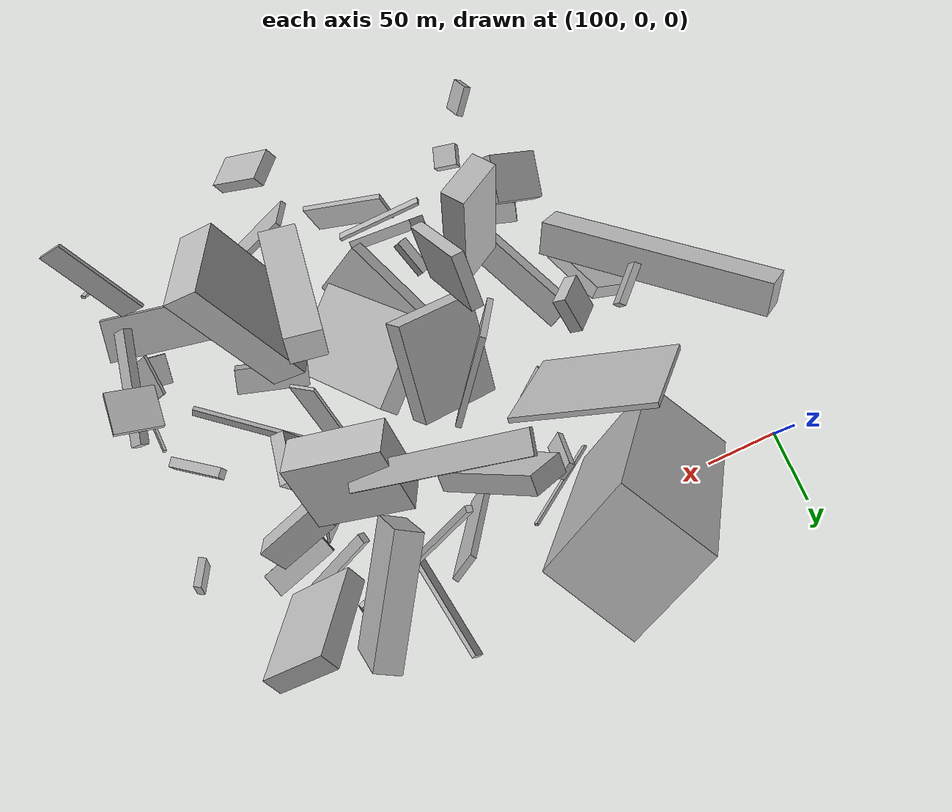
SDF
<sdf version="1.6">
 <world name="default">
  <model name="building_3">
   <static>0</static>
   <pose>196.94101169299068 -23.852186492525295 85.03676326127892 -0.10717618988302265 0.5370241598284978 0.4286737553153996</pose>
   <link name="link">
    <gravity>0</gravity>
    <pose>0 0 75.0 0 0 0</pose>
    <collision name="collision"><geometry><box><size>64 58 150</size></box></geometry></collision>
    <visual name="visual">
     <cast_shadows>0</cast_shadows>
     <geometry><box><size>64 58 150</size></box></geometry>
     <material>
      <script>
       <uri>model://HANNAS_wall/materials/scripts</uri>
       <uri>model://HANNAS_wall/materials/textures</uri>
       <name>vrc/HANNAS_wall</name>
      </script>
     </material>
    </visual>
   </link>
  </model>
  <model name="building_7">
   <static>0</static>
   <pose>190.50636840695503 -179.413061214203 63.150342522314716 1.0931903792221618 -0.7215166813194551 -2.0668910434303838</pose>
   <link name="link">
    <gravity>0</gravity>
    <pose>0 0 75.0 0 0 0</pose>
    <collision name="collision"><geometry><box><size>22 21 150</size></box></geometry></collision>
    <visual name="visual">
     <cast_shadows>0</cast_shadows>
     <geometry><box><size>22 21 150</size></box></geometry>
     <material>
      <script>
       <uri>model://HANNAS_wall/materials/scripts</uri>
       <uri>model://HANNAS_wall/materials/textures</uri>
       <name>vrc/HANNAS_wall</name>
      </script>
     </material>
    </visual>
   </link>
  </model>
  <model name="building_14">
   <static>0</static>
   <pose>316.0667784874225 -30.431536156151964 60.97014140246682 1.7456314045055163 -0.44665392857538283 -2.6576281017336534</pose>
   <link name="link">
    <gravity>0</gravity>
    <pose>0 0 2.0 0 0 0</pose>
    <collision name="collision"><geometry><box><size>19 113 4</size></box></geometry></collision>
    <visual name="visual">
     <cast_shadows>0</cast_shadows>
     <geometry><box><size>19 113 4</size></box></geometry>
     <material>
      <script>
       <uri>model://HANNAS_wall/materials/scripts</uri>
       <uri>model://HANNAS_wall/materials/textures</uri>
       <name>vrc/HANNAS_wall</name>
      </script>
     </material>
    </visual>
   </link>
  </model>
  <model name="building_16">
   <static>0</static>
   <pose>392.3072084396442 -132.91633354064174 13.097634788209685 -0.8047364564581748 -0.046846426155950985 -0.7011548754864289</pose>
   <link name="link">
    <gravity>0</gravity>
    <pose>0 0 2.0 0 0 0</pose>
    <collision name="collision"><geometry><box><size>150 5 4</size></box></geometry></collision>
    <visual name="visual">
     <cast_shadows>0</cast_shadows>
     <geometry><box><size>150 5 4</size></box></geometry>
     <material>
      <script>
       <uri>model://HANNAS_wall/materials/scripts</uri>
       <uri>model://HANNAS_wall/materials/textures</uri>
       <name>vrc/HANNAS_wall</name>
      </script>
     </material>
    </visual>
   </link>
  </model>
  <model name="building_18">
   <static>0</static>
   <pose>261.7999692067236 -133.57863174096963 61.57466644306172 0.6465894400426304 0.04952040182783067 2.4536771388072682</pose>
   <link name="link">
    <gravity>0</gravity>
    <pose>0 0 28.5 0 0 0</pose>
    <collision name="collision"><geometry><box><size>4 63 57</size></box></geometry></collision>
    <visual name="visual">
     <cast_shadows>0</cast_shadows>
     <geometry><box><size>4 63 57</size></box></geometry>
     <material>
      <script>
       <uri>model://HANNAS_wall/materials/scripts</uri>
       <uri>model://HANNAS_wall/materials/textures</uri>
       <name>vrc/HANNAS_wall</name>
      </script>
     </material>
    </visual>
   </link>
  </model>
  <model name="building_19">
   <static>0</static>
   <pose>428.0100042955955 -246.20898675549606 37.376018364381196 2.835572647803101 -1.1945118802888808 1.6760327118277407</pose>
   <link name="link">
    <gravity>0</gravity>
    <pose>0 0 14.0 0 0 0</pose>
    <collision name="collision"><geometry><box><size>12 103 28</size></box></geometry></collision>
    <visual name="visual">
     <cast_shadows>0</cast_shadows>
     <geometry><box><size>12 103 28</size></box></geometry>
     <material>
      <script>
       <uri>model://HANNAS_wall/materials/scripts</uri>
       <uri>model://HANNAS_wall/materials/textures</uri>
       <name>vrc/HANNAS_wall</name>
      </script>
     </material>
    </visual>
   </link>
  </model>
  <model name="building_20">
   <static>0</static>
   <pose>395.30493964058525 -92.34229933938144 117.17108386380531 1.0630977818233391 -0.8424706589486903 -1.4455936144356671</pose>
   <link name="link">
    <gravity>0</gravity>
    <pose>0 0 30.5 0 0 0</pose>
    <collision name="collision"><geometry><box><size>51 25 61</size></box></geometry></collision>
    <visual name="visual">
     <cast_shadows>0</cast_shadows>
     <geometry><box><size>51 25 61</size></box></geometry>
     <material>
      <script>
       <uri>model://HANNAS_wall/materials/scripts</uri>
       <uri>model://HANNAS_wall/materials/textures</uri>
       <name>vrc/HANNAS_wall</name>
      </script>
     </material>
    </visual>
   </link>
  </model>
  <model name="building_21">
   <static>0</static>
   <pose>274.1176198754541 -55.66769691245568 55.741877741879144 0.921523315342639 0.4297152876588826 1.5142178881075152</pose>
   <link name="link">
    <gravity>0</gravity>
    <pose>0 0 14.5 0 0 0</pose>
    <collision name="collision"><geometry><box><size>14 82 29</size></box></geometry></collision>
    <visual name="visual">
     <cast_shadows>0</cast_shadows>
     <geometry><box><size>14 82 29</size></box></geometry>
     <material>
      <script>
       <uri>model://HANNAS_wall/materials/scripts</uri>
       <uri>model://HANNAS_wall/materials/textures</uri>
       <name>vrc/HANNAS_wall</name>
      </script>
     </material>
    </visual>
   </link>
  </model>
  <model name="building_28">
   <static>0</static>
   <pose>353.1940645293082 -144.71933570355776 41.332064948987316 -1.4008870746689353 -0.5412063835921306 2.21202912507191</pose>
   <link name="link">
    <gravity>0</gravity>
    <pose>0 0 31.0 0 0 0</pose>
    <collision name="collision"><geometry><box><size>81 19 62</size></box></geometry></collision>
    <visual name="visual">
     <cast_shadows>0</cast_shadows>
     <geometry><box><size>81 19 62</size></box></geometry>
     <material>
      <script>
       <uri>model://HANNAS_wall/materials/scripts</uri>
       <uri>model://HANNAS_wall/materials/textures</uri>
       <name>vrc/HANNAS_wall</name>
      </script>
     </material>
    </visual>
   </link>
  </model>
  <model name="building_36">
   <static>0</static>
   <pose>346.7774181658001 -29.741683877760163 91.44816467800025 1.3407157926723692 0.3816458607613275 2.869380467046199</pose>
   <link name="link">
    <gravity>0</gravity>
    <pose>0 0 2.0 0 0 0</pose>
    <collision name="collision"><geometry><box><size>4 150 4</size></box></geometry></collision>
    <visual name="visual">
     <cast_shadows>0</cast_shadows>
     <geometry><box><size>4 150 4</size></box></geometry>
     <material>
      <script>
       <uri>model://HANNAS_wall/materials/scripts</uri>
       <uri>model://HANNAS_wall/materials/textures</uri>
       <name>vrc/HANNAS_wall</name>
      </script>
     </material>
    </visual>
   </link>
  </model>
  <model name="building_38">
   <static>0</static>
   <pose>488.67369343721634 -74.24169819657914 15.866578409388056 0.21499383037150036 -0.07022931389827311 -0.555680839588141</pose>
   <link name="link">
    <gravity>0</gravity>
    <pose>0 0 13.0 0 0 0</pose>
    <collision name="collision"><geometry><box><size>5 19 26</size></box></geometry></collision>
    <visual name="visual">
     <cast_shadows>0</cast_shadows>
     <geometry><box><size>5 19 26</size></box></geometry>
     <material>
      <script>
       <uri>model://HANNAS_wall/materials/scripts</uri>
       <uri>model://HANNAS_wall/materials/textures</uri>
       <name>vrc/HANNAS_wall</name>
      </script>
     </material>
    </visual>
   </link>
  </model>
  <model name="building_45">
   <static>0</static>
   <pose>322.1054726729883 -67.02097377802386 168.16520493836197 3.118902541991762 0.5134133669927164 -0.2839396074568285</pose>
   <link name="link">
    <gravity>0</gravity>
    <pose>0 0 2.0 0 0 0</pose>
    <collision name="collision"><geometry><box><size>115 15 4</size></box></geometry></collision>
    <visual name="visual">
     <cast_shadows>0</cast_shadows>
     <geometry><box><size>115 15 4</size></box></geometry>
     <material>
      <script>
       <uri>model://HANNAS_wall/materials/scripts</uri>
       <uri>model://HANNAS_wall/materials/textures</uri>
       <name>vrc/HANNAS_wall</name>
      </script>
     </material>
    </visual>
   </link>
  </model>
  <model name="building_46">
   <static>0</static>
   <pose>409.81647661095 -33.12656830785072 84.91780740882496 0.6727454625095052 -0.655723175859762 3.1279728697994766</pose>
   <link name="link">
    <gravity>0</gravity>
    <pose>0 0 31.0 0 0 0</pose>
    <collision name="collision"><geometry><box><size>50 14 62</size></box></geometry></collision>
    <visual name="visual">
     <cast_shadows>0</cast_shadows>
     <geometry><box><size>50 14 62</size></box></geometry>
     <material>
      <script>
       <uri>model://HANNAS_wall/materials/scripts</uri>
       <uri>model://HANNAS_wall/materials/textures</uri>
       <name>vrc/HANNAS_wall</name>
      </script>
     </material>
    </visual>
   </link>
  </model>
  <model name="building_48">
   <static>0</static>
   <pose>372.65005872697157 -219.85057853060357 116.85582710702974 -0.9303031945038349 -0.8128402908479886 -1.0077503251969608</pose>
   <link name="link">
    <gravity>0</gravity>
    <pose>0 0 24.5 0 0 0</pose>
    <collision name="collision"><geometry><box><size>90 25 49</size></box></geometry></collision>
    <visual name="visual">
     <cast_shadows>0</cast_shadows>
     <geometry><box><size>90 25 49</size></box></geometry>
     <material>
      <script>
       <uri>model://HANNAS_wall/materials/scripts</uri>
       <uri>model://HANNAS_wall/materials/textures</uri>
       <name>vrc/HANNAS_wall</name>
      </script>
     </material>
    </visual>
   </link>
  </model>
  <model name="building_50">
   <static>0</static>
   <pose>220.86505331360195 -256.19160992129406 146.92379286603537 -2.2550753702309385 -0.8256295268816202 1.6528478169733016</pose>
   <link name="link">
    <gravity>0</gravity>
    <pose>0 0 2.0 0 0 0</pose>
    <collision name="collision"><geometry><box><size>17 17 4</size></box></geometry></collision>
    <visual name="visual">
     <cast_shadows>0</cast_shadows>
     <geometry><box><size>17 17 4</size></box></geometry>
     <material>
      <script>
       <uri>model://HANNAS_wall/materials/scripts</uri>
       <uri>model://HANNAS_wall/materials/textures</uri>
       <name>vrc/HANNAS_wall</name>
      </script>
     </material>
    </visual>
   </link>
  </model>
  <model name="building_54">
   <static>0</static>
   <pose>265.6957070730981 -153.7687922476667 13.620396007652708 1.9270283446784517 0.3181062293003859 2.5058402378850833</pose>
   <link name="link">
    <gravity>0</gravity>
    <pose>0 0 2.0 0 0 0</pose>
    <collision name="collision"><geometry><box><size>38 5 4</size></box></geometry></collision>
    <visual name="visual">
     <cast_shadows>0</cast_shadows>
     <geometry><box><size>38 5 4</size></box></geometry>
     <material>
      <script>
       <uri>model://HANNAS_wall/materials/scripts</uri>
       <uri>model://HANNAS_wall/materials/textures</uri>
       <name>vrc/HANNAS_wall</name>
      </script>
     </material>
    </visual>
   </link>
  </model>
  <model name="building_55">
   <static>0</static>
   <pose>348.7555725041409 -272.2305155143253 126.04868505978634 -0.248468402914568 -0.7291242090016277 2.547190054884107</pose>
   <link name="link">
    <gravity>0</gravity>
    <pose>0 0 4.0 0 0 0</pose>
    <collision name="collision"><geometry><box><size>39 20 8</size></box></geometry></collision>
    <visual name="visual">
     <cast_shadows>0</cast_shadows>
     <geometry><box><size>39 20 8</size></box></geometry>
     <material>
      <script>
       <uri>model://HANNAS_wall/materials/scripts</uri>
       <uri>model://HANNAS_wall/materials/textures</uri>
       <name>vrc/HANNAS_wall</name>
      </script>
     </material>
    </visual>
   </link>
  </model>
  <model name="building_71">
   <static>0</static>
   <pose>437.3565216037048 -68.61914271934508 34.30843877381673 -0.8928832874892836 0.47854132627180146 2.137817232400987</pose>
   <link name="link">
    <gravity>0</gravity>
    <pose>0 0 26.5 0 0 0</pose>
    <collision name="collision"><geometry><box><size>20 14 53</size></box></geometry></collision>
    <visual name="visual">
     <cast_shadows>0</cast_shadows>
     <geometry><box><size>20 14 53</size></box></geometry>
     <material>
      <script>
       <uri>model://HANNAS_wall/materials/scripts</uri>
       <uri>model://HANNAS_wall/materials/textures</uri>
       <name>vrc/HANNAS_wall</name>
      </script>
     </material>
    </visual>
   </link>
  </model>
  <model name="building_73">
   <static>0</static>
   <pose>314.17992808929654 -126.4035847208243 107.84374916059397 2.230889309847016 0.8909190472969664 -0.939733376667284</pose>
   <link name="link">
    <gravity>0</gravity>
    <pose>0 0 26.5 0 0 0</pose>
    <collision name="collision"><geometry><box><size>15 64 53</size></box></geometry></collision>
    <visual name="visual">
     <cast_shadows>0</cast_shadows>
     <geometry><box><size>15 64 53</size></box></geometry>
     <material>
      <script>
       <uri>model://HANNAS_wall/materials/scripts</uri>
       <uri>model://HANNAS_wall/materials/textures</uri>
       <name>vrc/HANNAS_wall</name>
      </script>
     </material>
    </visual>
   </link>
  </model>
  <model name="building_75">
   <static>0</static>
   <pose>188.74963731434354 -107.0743389491158 186.80692967861177 2.879050373058401 0.030683555929073732 0.7590617573124923</pose>
   <link name="link">
    <gravity>0</gravity>
    <pose>0 0 4.5 0 0 0</pose>
    <collision name="collision"><geometry><box><size>24 4 9</size></box></geometry></collision>
    <visual name="visual">
     <cast_shadows>0</cast_shadows>
     <geometry><box><size>24 4 9</size></box></geometry>
     <material>
      <script>
       <uri>model://HANNAS_wall/materials/scripts</uri>
       <uri>model://HANNAS_wall/materials/textures</uri>
       <name>vrc/HANNAS_wall</name>
      </script>
     </material>
    </visual>
   </link>
  </model>
  <model name="building_76">
   <static>0</static>
   <pose>399.0767223659126 -16.141876456013794 6.560536453187842 -2.8326186868595746 0.6589390769807529 -1.0916643457401227</pose>
   <link name="link">
    <gravity>0</gravity>
    <pose>0 0 4.0 0 0 0</pose>
    <collision name="collision"><geometry><box><size>4 10 8</size></box></geometry></collision>
    <visual name="visual">
     <cast_shadows>0</cast_shadows>
     <geometry><box><size>4 10 8</size></box></geometry>
     <material>
      <script>
       <uri>model://HANNAS_wall/materials/scripts</uri>
       <uri>model://HANNAS_wall/materials/textures</uri>
       <name>vrc/HANNAS_wall</name>
      </script>
     </material>
    </visual>
   </link>
  </model>
  <model name="building_79">
   <static>0</static>
   <pose>319.658312011298 -225.1948068855677 32.17056919056798 -1.6711283728660589 0.7099019607687979 0.2992518365790529</pose>
   <link name="link">
    <gravity>0</gravity>
    <pose>0 0 43.0 0 0 0</pose>
    <collision name="collision"><geometry><box><size>40 12 86</size></box></geometry></collision>
    <visual name="visual">
     <cast_shadows>0</cast_shadows>
     <geometry><box><size>40 12 86</size></box></geometry>
     <material>
      <script>
       <uri>model://HANNAS_wall/materials/scripts</uri>
       <uri>model://HANNAS_wall/materials/textures</uri>
       <name>vrc/HANNAS_wall</name>
      </script>
     </material>
    </visual>
   </link>
  </model>
  <model name="building_81">
   <static>0</static>
   <pose>282.7691883716138 -228.78588431570282 30.869368836469384 -1.1628829469563158 -0.7679619171296312 2.7771609967227593</pose>
   <link name="link">
    <gravity>0</gravity>
    <pose>0 0 3.5 0 0 0</pose>
    <collision name="collision"><geometry><box><size>59 14 7</size></box></geometry></collision>
    <visual name="visual">
     <cast_shadows>0</cast_shadows>
     <geometry><box><size>59 14 7</size></box></geometry>
     <material>
      <script>
       <uri>model://HANNAS_wall/materials/scripts</uri>
       <uri>model://HANNAS_wall/materials/textures</uri>
       <name>vrc/HANNAS_wall</name>
      </script>
     </material>
    </visual>
   </link>
  </model>
  <model name="building_82">
   <static>0</static>
   <pose>402.45997569483455 -41.48999578687453 32.10347523463004 1.777138436853245 0.6306036400377316 0.33222855502667137</pose>
   <link name="link">
    <gravity>0</gravity>
    <pose>0 0 3.5 0 0 0</pose>
    <collision name="collision"><geometry><box><size>60 6 7</size></box></geometry></collision>
    <visual name="visual">
     <cast_shadows>0</cast_shadows>
     <geometry><box><size>60 6 7</size></box></geometry>
     <material>
      <script>
       <uri>model://HANNAS_wall/materials/scripts</uri>
       <uri>model://HANNAS_wall/materials/textures</uri>
       <name>vrc/HANNAS_wall</name>
      </script>
     </material>
    </visual>
   </link>
  </model>
  <model name="building_88">
   <static>0</static>
   <pose>423.68952034586295 -48.59380277353718 27.181778823203707 -0.8463355052146809 1.4055056258965846 -2.1470943433737073</pose>
   <link name="link">
    <gravity>0</gravity>
    <pose>0 0 8.5 0 0 0</pose>
    <collision name="collision"><geometry><box><size>4 45 17</size></box></geometry></collision>
    <visual name="visual">
     <cast_shadows>0</cast_shadows>
     <geometry><box><size>4 45 17</size></box></geometry>
     <material>
      <script>
       <uri>model://HANNAS_wall/materials/scripts</uri>
       <uri>model://HANNAS_wall/materials/textures</uri>
       <name>vrc/HANNAS_wall</name>
      </script>
     </material>
    </visual>
   </link>
  </model>
  <model name="building_90">
   <static>0</static>
   <pose>260.465073746855 -55.95591724704856 6.606467581390008 1.8816744882905423 -0.9457312950434258 -1.911145756043433</pose>
   <link name="link">
    <gravity>0</gravity>
    <pose>0 0 2.0 0 0 0</pose>
    <collision name="collision"><geometry><box><size>4 12 4</size></box></geometry></collision>
    <visual name="visual">
     <cast_shadows>0</cast_shadows>
     <geometry><box><size>4 12 4</size></box></geometry>
     <material>
      <script>
       <uri>model://HANNAS_wall/materials/scripts</uri>
       <uri>model://HANNAS_wall/materials/textures</uri>
       <name>vrc/HANNAS_wall</name>
      </script>
     </material>
    </visual>
   </link>
  </model>
  <model name="building_94">
   <static>0</static>
   <pose>174.87985580794597 -171.16857956105332 25.168592637331617 0.966328303575933 -0.7380716382975742 -2.4653784669183487</pose>
   <link name="link">
    <gravity>0</gravity>
    <pose>0 0 23.5 0 0 0</pose>
    <collision name="collision"><geometry><box><size>9 37 47</size></box></geometry></collision>
    <visual name="visual">
     <cast_shadows>0</cast_shadows>
     <geometry><box><size>9 37 47</size></box></geometry>
     <material>
      <script>
       <uri>model://HANNAS_wall/materials/scripts</uri>
       <uri>model://HANNAS_wall/materials/textures</uri>
       <name>vrc/HANNAS_wall</name>
      </script>
     </material>
    </visual>
   </link>
  </model>
  <model name="building_103">
   <static>0</static>
   <pose>405.2375399333255 -118.37641000903753 67.87835088307045 -2.8829146146516207 0.4136318304266671 -0.09046223791417088</pose>
   <link name="link">
    <gravity>0</gravity>
    <pose>0 0 25.0 0 0 0</pose>
    <collision name="collision"><geometry><box><size>10 34 50</size></box></geometry></collision>
    <visual name="visual">
     <cast_shadows>0</cast_shadows>
     <geometry><box><size>10 34 50</size></box></geometry>
     <material>
      <script>
       <uri>model://HANNAS_wall/materials/scripts</uri>
       <uri>model://HANNAS_wall/materials/textures</uri>
       <name>vrc/HANNAS_wall</name>
      </script>
     </material>
    </visual>
   </link>
  </model>
  <model name="building_104">
   <static>0</static>
   <pose>463.5760833208606 -261.0029251165977 99.6554506232435 -2.1104934751538065 -0.8830787519348797 2.758901424216332</pose>
   <link name="link">
    <gravity>0</gravity>
    <pose>0 0 1.0 0 0 0</pose>
    <collision name="collision"><geometry><box><size>30 61 2</size></box></geometry></collision>
    <visual name="visual">
     <cast_shadows>0</cast_shadows>
     <geometry><box><size>30 61 2</size></box></geometry>
     <material>
      <script>
       <uri>model://HANNAS_wall/materials/scripts</uri>
       <uri>model://HANNAS_wall/materials/textures</uri>
       <name>vrc/HANNAS_wall</name>
      </script>
     </material>
    </visual>
   </link>
  </model>
  <model name="building_105">
   <static>0</static>
   <pose>474.0320129534916 -166.471400009992 43.49504192684646 0.6544478412104703 0.4483702598987192 -1.490109032075181</pose>
   <link name="link">
    <gravity>0</gravity>
    <pose>0 0 1.0 0 0 0</pose>
    <collision name="collision"><geometry><box><size>22 2 2</size></box></geometry></collision>
    <visual name="visual">
     <cast_shadows>0</cast_shadows>
     <geometry><box><size>22 2 2</size></box></geometry>
     <material>
      <script>
       <uri>model://HANNAS_wall/materials/scripts</uri>
       <uri>model://HANNAS_wall/materials/textures</uri>
       <name>vrc/HANNAS_wall</name>
      </script>
     </material>
    </visual>
   </link>
  </model>
  <model name="building_109">
   <static>0</static>
   <pose>380.60035700949754 -82.43203646974457 38.47216487300315 -1.4604332981225123 -0.3655378671894833 0.743711740469095</pose>
   <link name="link">
    <gravity>0</gravity>
    <pose>0 0 1.0 0 0 0</pose>
    <collision name="collision"><geometry><box><size>60 18 2</size></box></geometry></collision>
    <visual name="visual">
     <cast_shadows>0</cast_shadows>
     <geometry><box><size>60 18 2</size></box></geometry>
     <material>
      <script>
       <uri>model://HANNAS_wall/materials/scripts</uri>
       <uri>model://HANNAS_wall/materials/textures</uri>
       <name>vrc/HANNAS_wall</name>
      </script>
     </material>
    </visual>
   </link>
  </model>
  <model name="building_117">
   <static>0</static>
   <pose>477.80131686016364 -201.7948271338107 56.67606518797943 0.7610283266516149 -0.006998984718805634 -1.8215744700205985</pose>
   <link name="link">
    <gravity>0</gravity>
    <pose>0 0 6.0 0 0 0</pose>
    <collision name="collision"><geometry><box><size>75 6 12</size></box></geometry></collision>
    <visual name="visual">
     <cast_shadows>0</cast_shadows>
     <geometry><box><size>75 6 12</size></box></geometry>
     <material>
      <script>
       <uri>model://HANNAS_wall/materials/scripts</uri>
       <uri>model://HANNAS_wall/materials/textures</uri>
       <name>vrc/HANNAS_wall</name>
      </script>
     </material>
    </visual>
   </link>
  </model>
  <model name="building_118">
   <static>0</static>
   <pose>220.7786909782648 -167.21845823155957 18.98457278696736 -0.06017950995978591 -0.7460727905650831 0.4393391095713704</pose>
   <link name="link">
    <gravity>0</gravity>
    <pose>0 0 10.5 0 0 0</pose>
    <collision name="collision"><geometry><box><size>9 80 21</size></box></geometry></collision>
    <visual name="visual">
     <cast_shadows>0</cast_shadows>
     <geometry><box><size>9 80 21</size></box></geometry>
     <material>
      <script>
       <uri>model://HANNAS_wall/materials/scripts</uri>
       <uri>model://HANNAS_wall/materials/textures</uri>
       <name>vrc/HANNAS_wall</name>
      </script>
     </material>
    </visual>
   </link>
  </model>
  <model name="building_122">
   <static>0</static>
   <pose>200.18167512900413 -76.58747790477146 105.70961480538269 -2.2903287393062 0.33140265311237416 -2.133314565260629</pose>
   <link name="link">
    <gravity>0</gravity>
    <pose>0 0 12.5 0 0 0</pose>
    <collision name="collision"><geometry><box><size>11 2 25</size></box></geometry></collision>
    <visual name="visual">
     <cast_shadows>0</cast_shadows>
     <geometry><box><size>11 2 25</size></box></geometry>
     <material>
      <script>
       <uri>model://HANNAS_wall/materials/scripts</uri>
       <uri>model://HANNAS_wall/materials/textures</uri>
       <name>vrc/HANNAS_wall</name>
      </script>
     </material>
    </visual>
   </link>
  </model>
  <model name="building_124">
   <static>0</static>
   <pose>278.7241581297685 -13.68413068738031 59.91442070068627 -2.104711113495482 0.4196047162993936 1.8790478447786623</pose>
   <link name="link">
    <gravity>0</gravity>
    <pose>0 0 35.5 0 0 0</pose>
    <collision name="collision"><geometry><box><size>2 3 71</size></box></geometry></collision>
    <visual name="visual">
     <cast_shadows>0</cast_shadows>
     <geometry><box><size>2 3 71</size></box></geometry>
     <material>
      <script>
       <uri>model://HANNAS_wall/materials/scripts</uri>
       <uri>model://HANNAS_wall/materials/textures</uri>
       <name>vrc/HANNAS_wall</name>
      </script>
     </material>
    </visual>
   </link>
  </model>
  <model name="building_126">
   <static>0</static>
   <pose>388.84813148141745 -170.5744278070472 65.94736642790022 -0.13005184590604657 0.28533935315218334 1.247597414530824</pose>
   <link name="link">
    <gravity>0</gravity>
    <pose>0 0 14.5 0 0 0</pose>
    <collision name="collision"><geometry><box><size>15 44 29</size></box></geometry></collision>
    <visual name="visual">
     <cast_shadows>0</cast_shadows>
     <geometry><box><size>15 44 29</size></box></geometry>
     <material>
      <script>
       <uri>model://HANNAS_wall/materials/scripts</uri>
       <uri>model://HANNAS_wall/materials/textures</uri>
       <name>vrc/HANNAS_wall</name>
      </script>
     </material>
    </visual>
   </link>
  </model>
  <model name="building_133">
   <static>0</static>
   <pose>243.58377646601727 -183.04031482857192 67.96632434327346 -0.23687663572228804 0.27623281002284505 -2.6213099108725864</pose>
   <link name="link">
    <gravity>0</gravity>
    <pose>0 0 40.0 0 0 0</pose>
    <collision name="collision"><geometry><box><size>34 16 80</size></box></geometry></collision>
    <visual name="visual">
     <cast_shadows>0</cast_shadows>
     <geometry><box><size>34 16 80</size></box></geometry>
     <material>
      <script>
       <uri>model://HANNAS_wall/materials/scripts</uri>
       <uri>model://HANNAS_wall/materials/textures</uri>
       <name>vrc/HANNAS_wall</name>
      </script>
     </material>
    </visual>
   </link>
  </model>
  <model name="building_134">
   <static>0</static>
   <pose>477.7095609571242 -208.92393011288252 20.14616023785807 0.6735417683126984 -0.11895909005951187 -1.5189023839801654</pose>
   <link name="link">
    <gravity>0</gravity>
    <pose>0 0 14.0 0 0 0</pose>
    <collision name="collision"><geometry><box><size>28 2 28</size></box></geometry></collision>
    <visual name="visual">
     <cast_shadows>0</cast_shadows>
     <geometry><box><size>28 2 28</size></box></geometry>
     <material>
      <script>
       <uri>model://HANNAS_wall/materials/scripts</uri>
       <uri>model://HANNAS_wall/materials/textures</uri>
       <name>vrc/HANNAS_wall</name>
      </script>
     </material>
    </visual>
   </link>
  </model>
  <model name="building_141">
   <static>0</static>
   <pose>248.6372402095318 -43.571100596846044 40.883567062748014 -0.6386830838379703 -0.859320761860294 1.334021198551364</pose>
   <link name="link">
    <gravity>0</gravity>
    <pose>0 0 6.5 0 0 0</pose>
    <collision name="collision"><geometry><box><size>35 4 13</size></box></geometry></collision>
    <visual name="visual">
     <cast_shadows>0</cast_shadows>
     <geometry><box><size>35 4 13</size></box></geometry>
     <material>
      <script>
       <uri>model://HANNAS_wall/materials/scripts</uri>
       <uri>model://HANNAS_wall/materials/textures</uri>
       <name>vrc/HANNAS_wall</name>
      </script>
     </material>
    </visual>
   </link>
  </model>
  <model name="building_142">
   <static>0</static>
   <pose>368.8252149067176 -126.76688737112642 104.03105701661015 -0.8306345621079474 -1.2276105767426428 -1.397195343960796</pose>
   <link name="link">
    <gravity>0</gravity>
    <pose>0 0 1.0 0 0 0</pose>
    <collision name="collision"><geometry><box><size>80 15 2</size></box></geometry></collision>
    <visual name="visual">
     <cast_shadows>0</cast_shadows>
     <geometry><box><size>80 15 2</size></box></geometry>
     <material>
      <script>
       <uri>model://HANNAS_wall/materials/scripts</uri>
       <uri>model://HANNAS_wall/materials/textures</uri>
       <name>vrc/HANNAS_wall</name>
      </script>
     </material>
    </visual>
   </link>
  </model>
  <model name="building_145">
   <static>0</static>
   <pose>270.1613338617543 -213.61288885269164 22.182871791186365 -1.2846076493553205 -0.26431244592368797 -1.290332572319355</pose>
   <link name="link">
    <gravity>0</gravity>
    <pose>0 0 3.5 0 0 0</pose>
    <collision name="collision"><geometry><box><size>26 9 7</size></box></geometry></collision>
    <visual name="visual">
     <cast_shadows>0</cast_shadows>
     <geometry><box><size>26 9 7</size></box></geometry>
     <material>
      <script>
       <uri>model://HANNAS_wall/materials/scripts</uri>
       <uri>model://HANNAS_wall/materials/textures</uri>
       <name>vrc/HANNAS_wall</name>
      </script>
     </material>
    </visual>
   </link>
  </model>
  <model name="building_149">
   <static>0</static>
   <pose>355.8295547894769 -32.56001562180218 19.9976814917338 0.988574839899574 1.1509415846969613 2.7175380331981236</pose>
   <link name="link">
    <gravity>0</gravity>
    <pose>0 0 40.0 0 0 0</pose>
    <collision name="collision"><geometry><box><size>12 3 80</size></box></geometry></collision>
    <visual name="visual">
     <cast_shadows>0</cast_shadows>
     <geometry><box><size>12 3 80</size></box></geometry>
     <material>
      <script>
       <uri>model://HANNAS_wall/materials/scripts</uri>
       <uri>model://HANNAS_wall/materials/textures</uri>
       <name>vrc/HANNAS_wall</name>
      </script>
     </material>
    </visual>
   </link>
  </model>
  <model name="building_169">
   <static>0</static>
   <pose>368.8304151912624 -10.476821255932592 116.18706394850558 1.3005352372091028 0.17062693784677452 0.9766282256345745</pose>
   <link name="link">
    <gravity>0</gravity>
    <pose>0 0 8.5 0 0 0</pose>
    <collision name="collision"><geometry><box><size>80 50 17</size></box></geometry></collision>
    <visual name="visual">
     <cast_shadows>0</cast_shadows>
     <geometry><box><size>80 50 17</size></box></geometry>
     <material>
      <script>
       <uri>model://HANNAS_wall/materials/scripts</uri>
       <uri>model://HANNAS_wall/materials/textures</uri>
       <name>vrc/HANNAS_wall</name>
      </script>
     </material>
    </visual>
   </link>
  </model>
  <model name="building_170">
   <static>0</static>
   <pose>304.14737968349834 -231.20008516863473 107.05438547407249 -1.7739103700824888 -0.2925976045120819 2.7704985247777794</pose>
   <link name="link">
    <gravity>0</gravity>
    <pose>0 0 1.5 0 0 0</pose>
    <collision name="collision"><geometry><box><size>49 25 3</size></box></geometry></collision>
    <visual name="visual">
     <cast_shadows>0</cast_shadows>
     <geometry><box><size>49 25 3</size></box></geometry>
     <material>
      <script>
       <uri>model://HANNAS_wall/materials/scripts</uri>
       <uri>model://HANNAS_wall/materials/textures</uri>
       <name>vrc/HANNAS_wall</name>
      </script>
     </material>
    </visual>
   </link>
  </model>
  <model name="building_171">
   <static>0</static>
   <pose>452.3639674191327 -211.54665388809536 26.355029345617034 -1.0790662334693712 1.1890397532605637 -1.2422935644351731</pose>
   <link name="link">
    <gravity>0</gravity>
    <pose>0 0 8.5 0 0 0</pose>
    <collision name="collision"><geometry><box><size>4 20 17</size></box></geometry></collision>
    <visual name="visual">
     <cast_shadows>0</cast_shadows>
     <geometry><box><size>4 20 17</size></box></geometry>
     <material>
      <script>
       <uri>model://HANNAS_wall/materials/scripts</uri>
       <uri>model://HANNAS_wall/materials/textures</uri>
       <name>vrc/HANNAS_wall</name>
      </script>
     </material>
    </visual>
   </link>
  </model>
  <model name="building_173">
   <static>0</static>
   <pose>190.4133732191939 -239.26141759939924 59.5343895911667 -1.8212966761810245 -0.542870838933401 -0.10412884018113686</pose>
   <link name="link">
    <gravity>0</gravity>
    <pose>0 0 15.5 0 0 0</pose>
    <collision name="collision"><geometry><box><size>37 9 31</size></box></geometry></collision>
    <visual name="visual">
     <cast_shadows>0</cast_shadows>
     <geometry><box><size>37 9 31</size></box></geometry>
     <material>
      <script>
       <uri>model://HANNAS_wall/materials/scripts</uri>
       <uri>model://HANNAS_wall/materials/textures</uri>
       <name>vrc/HANNAS_wall</name>
      </script>
     </material>
    </visual>
   </link>
  </model>
  <model name="building_174">
   <static>0</static>
   <pose>300.25038525456614 -163.9468429973698 42.56224867234323 -0.08608953711075863 -0.3341615957350221 -1.3389754479171148</pose>
   <link name="link">
    <gravity>0</gravity>
    <pose>0 0 19.0 0 0 0</pose>
    <collision name="collision"><geometry><box><size>3 20 38</size></box></geometry></collision>
    <visual name="visual">
     <cast_shadows>0</cast_shadows>
     <geometry><box><size>3 20 38</size></box></geometry>
     <material>
      <script>
       <uri>model://HANNAS_wall/materials/scripts</uri>
       <uri>model://HANNAS_wall/materials/textures</uri>
       <name>vrc/HANNAS_wall</name>
      </script>
     </material>
    </visual>
   </link>
  </model>
  <model name="building_175">
   <static>0</static>
   <pose>219.7746835056603 -272.9641229611689 25.343353870354576 -1.6343283239004172 -1.216038533847893 -0.2931174709431148</pose>
   <link name="link">
    <gravity>0</gravity>
    <pose>0 0 7.5 0 0 0</pose>
    <collision name="collision"><geometry><box><size>7 16 15</size></box></geometry></collision>
    <visual name="visual">
     <cast_shadows>0</cast_shadows>
     <geometry><box><size>7 16 15</size></box></geometry>
     <material>
      <script>
       <uri>model://HANNAS_wall/materials/scripts</uri>
       <uri>model://HANNAS_wall/materials/textures</uri>
       <name>vrc/HANNAS_wall</name>
      </script>
     </material>
    </visual>
   </link>
  </model>
  <model name="building_176">
   <static>0</static>
   <pose>258.8171192497997 -82.72819310430734 151.0716970374568 1.1136835787598203 -0.4849925771290745 -1.7329755215378333</pose>
   <link name="link">
    <gravity>0</gravity>
    <pose>0 0 40.0 0 0 0</pose>
    <collision name="collision"><geometry><box><size>3 80 80</size></box></geometry></collision>
    <visual name="visual">
     <cast_shadows>0</cast_shadows>
     <geometry><box><size>3 80 80</size></box></geometry>
     <material>
      <script>
       <uri>model://HANNAS_wall/materials/scripts</uri>
       <uri>model://HANNAS_wall/materials/textures</uri>
       <name>vrc/HANNAS_wall</name>
      </script>
     </material>
    </visual>
   </link>
  </model>
  <model name="building_177">
   <static>0</static>
   <pose>234.65580406512382 -98.56892050030143 12.873248047150836 -0.8830603925355388 -0.4826806473816134 -2.5154475067494158</pose>
   <link name="link">
    <gravity>0</gravity>
    <pose>0 0 2.0 0 0 0</pose>
    <collision name="collision"><geometry><box><size>25 6 4</size></box></geometry></collision>
    <visual name="visual">
     <cast_shadows>0</cast_shadows>
     <geometry><box><size>25 6 4</size></box></geometry>
     <material>
      <script>
       <uri>model://HANNAS_wall/materials/scripts</uri>
       <uri>model://HANNAS_wall/materials/textures</uri>
       <name>vrc/HANNAS_wall</name>
      </script>
     </material>
    </visual>
   </link>
  </model>
  <model name="building_184">
   <static>0</static>
   <pose>253.31074372171108 -9.609580067411361 16.188280520282422 -1.4134628373315135 -0.9817799022920009 0.38310889277284377</pose>
   <link name="link">
    <gravity>0</gravity>
    <pose>0 0 20.5 0 0 0</pose>
    <collision name="collision"><geometry><box><size>17 17 41</size></box></geometry></collision>
    <visual name="visual">
     <cast_shadows>0</cast_shadows>
     <geometry><box><size>17 17 41</size></box></geometry>
     <material>
      <script>
       <uri>model://HANNAS_wall/materials/scripts</uri>
       <uri>model://HANNAS_wall/materials/textures</uri>
       <name>vrc/HANNAS_wall</name>
      </script>
     </material>
    </visual>
   </link>
  </model>
  <model name="building_190">
   <static>0</static>
   <pose>419.11120027324546 -6.046130651685402 76.64034021409417 1.315549846102788 0.7486540450341999 1.3518409905750606</pose>
   <link name="link">
    <gravity>0</gravity>
    <pose>0 0 8.5 0 0 0</pose>
    <collision name="collision"><geometry><box><size>12 23 17</size></box></geometry></collision>
    <visual name="visual">
     <cast_shadows>0</cast_shadows>
     <geometry><box><size>12 23 17</size></box></geometry>
     <material>
      <script>
       <uri>model://HANNAS_wall/materials/scripts</uri>
       <uri>model://HANNAS_wall/materials/textures</uri>
       <name>vrc/HANNAS_wall</name>
      </script>
     </material>
    </visual>
   </link>
  </model>
  <model name="building_194">
   <static>0</static>
   <pose>343.0316534679538 -187.41462407361973 149.83595627790865 -1.4349704884594314 -1.1226084825594158 -1.8689934319125916</pose>
   <link name="link">
    <gravity>0</gravity>
    <pose>0 0 11.0 0 0 0</pose>
    <collision name="collision"><geometry><box><size>23 80 22</size></box></geometry></collision>
    <visual name="visual">
     <cast_shadows>0</cast_shadows>
     <geometry><box><size>23 80 22</size></box></geometry>
     <material>
      <script>
       <uri>model://HANNAS_wall/materials/scripts</uri>
       <uri>model://HANNAS_wall/materials/textures</uri>
       <name>vrc/HANNAS_wall</name>
      </script>
     </material>
    </visual>
   </link>
  </model>
  <model name="building_195">
   <static>0</static>
   <pose>360.0284838500508 -267.45119653748174 28.060078144452266 0.9144456571787398 -0.534657253077057 1.055537712761116</pose>
   <link name="link">
    <gravity>0</gravity>
    <pose>0 0 2.0 0 0 0</pose>
    <collision name="collision"><geometry><box><size>22 54 4</size></box></geometry></collision>
    <visual name="visual">
     <cast_shadows>0</cast_shadows>
     <geometry><box><size>22 54 4</size></box></geometry>
     <material>
      <script>
       <uri>model://HANNAS_wall/materials/scripts</uri>
       <uri>model://HANNAS_wall/materials/textures</uri>
       <name>vrc/HANNAS_wall</name>
      </script>
     </material>
    </visual>
   </link>
  </model>
  <model name="building_201">
   <static>0</static>
   <pose>471.37734705463095 -281.1044727777083 37.433318419104815 -0.8225586004890383 0.28195197399574706 -0.6317639632110581</pose>
   <link name="link">
    <gravity>0</gravity>
    <pose>0 0 8.5 0 0 0</pose>
    <collision name="collision"><geometry><box><size>3 2 17</size></box></geometry></collision>
    <visual name="visual">
     <cast_shadows>0</cast_shadows>
     <geometry><box><size>3 2 17</size></box></geometry>
     <material>
      <script>
       <uri>model://HANNAS_wall/materials/scripts</uri>
       <uri>model://HANNAS_wall/materials/textures</uri>
       <name>vrc/HANNAS_wall</name>
      </script>
     </material>
    </visual>
   </link>
  </model>
  <model name="building_206">
   <static>0</static>
   <pose>198.2817823818435 -140.23984148634202 69.39606117278493 2.3501286075801753 0.5513800415426984 -2.45063955655843</pose>
   <link name="link">
    <gravity>0</gravity>
    <pose>0 0 13.0 0 0 0</pose>
    <collision name="collision"><geometry><box><size>25 9 26</size></box></geometry></collision>
    <visual name="visual">
     <cast_shadows>0</cast_shadows>
     <geometry><box><size>25 9 26</size></box></geometry>
     <material>
      <script>
       <uri>model://HANNAS_wall/materials/scripts</uri>
       <uri>model://HANNAS_wall/materials/textures</uri>
       <name>vrc/HANNAS_wall</name>
      </script>
     </material>
    </visual>
   </link>
  </model>
  <model name="building_207">
   <static>0</static>
   <pose>293.35611807770783 -203.43629974206831 165.59809580343483 2.4499542825352263 -0.3247335808038674 3.053913031099981</pose>
   <link name="link">
    <gravity>0</gravity>
    <pose>0 0 1.0 0 0 0</pose>
    <collision name="collision"><geometry><box><size>49 5 2</size></box></geometry></collision>
    <visual name="visual">
     <cast_shadows>0</cast_shadows>
     <geometry><box><size>49 5 2</size></box></geometry>
     <material>
      <script>
       <uri>model://HANNAS_wall/materials/scripts</uri>
       <uri>model://HANNAS_wall/materials/textures</uri>
       <name>vrc/HANNAS_wall</name>
      </script>
     </material>
    </visual>
   </link>
  </model>
  <model name="building_208">
   <static>0</static>
   <pose>199.0018419238633 -240.45659872205616 36.631223543393496 0.9289157750136119 -0.383705599416241 2.182796636851874</pose>
   <link name="link">
    <gravity>0</gravity>
    <pose>0 0 17.5 0 0 0</pose>
    <collision name="collision"><geometry><box><size>11 5 35</size></box></geometry></collision>
    <visual name="visual">
     <cast_shadows>0</cast_shadows>
     <geometry><box><size>11 5 35</size></box></geometry>
     <material>
      <script>
       <uri>model://HANNAS_wall/materials/scripts</uri>
       <uri>model://HANNAS_wall/materials/textures</uri>
       <name>vrc/HANNAS_wall</name>
      </script>
     </material>
    </visual>
   </link>
  </model>
  <model name="building_209">
   <static>0</static>
   <pose>206.07654062402193 -210.56672295748547 36.41942014771072 0.27458196354197667 0.4250837852283714 1.2783263402891902</pose>
   <link name="link">
    <gravity>0</gravity>
    <pose>0 0 1.0 0 0 0</pose>
    <collision name="collision"><geometry><box><size>13 18 2</size></box></geometry></collision>
    <visual name="visual">
     <cast_shadows>0</cast_shadows>
     <geometry><box><size>13 18 2</size></box></geometry>
     <material>
      <script>
       <uri>model://HANNAS_wall/materials/scripts</uri>
       <uri>model://HANNAS_wall/materials/textures</uri>
       <name>vrc/HANNAS_wall</name>
      </script>
     </material>
    </visual>
   </link>
  </model>
  <model name="building_214">
   <static>0</static>
   <pose>460.3145524621895 -164.2603286052216 154.0753233470405 0.1807383983266518 -0.41713506066475303 -0.18536432396477634</pose>
   <link name="link">
    <gravity>0</gravity>
    <pose>0 0 1.5 0 0 0</pose>
    <collision name="collision"><geometry><box><size>28 25 3</size></box></geometry></collision>
    <visual name="visual">
     <cast_shadows>0</cast_shadows>
     <geometry><box><size>28 25 3</size></box></geometry>
     <material>
      <script>
       <uri>model://HANNAS_wall/materials/scripts</uri>
       <uri>model://HANNAS_wall/materials/textures</uri>
       <name>vrc/HANNAS_wall</name>
      </script>
     </material>
    </visual>
   </link>
  </model>
  <model name="building_222">
   <static>0</static>
   <pose>448.0448291779657 -127.42007882917383 102.92660029748407 0.07627384745130815 0.2545277515581337 -0.6666926593020527</pose>
   <link name="link">
    <gravity>0</gravity>
    <pose>0 0 4.0 0 0 0</pose>
    <collision name="collision"><geometry><box><size>33 6 8</size></box></geometry></collision>
    <visual name="visual">
     <cast_shadows>0</cast_shadows>
     <geometry><box><size>33 6 8</size></box></geometry>
     <material>
      <script>
       <uri>model://HANNAS_wall/materials/scripts</uri>
       <uri>model://HANNAS_wall/materials/textures</uri>
       <name>vrc/HANNAS_wall</name>
      </script>
     </material>
    </visual>
   </link>
  </model>
  <model name="building_226">
   <static>0</static>
   <pose>269.0010758710866 -195.81195919325626 88.70368669460264 0.6364988762311619 0.0933406349090319 -3.085684349701779</pose>
   <link name="link">
    <gravity>0</gravity>
    <pose>0 0 35.5 0 0 0</pose>
    <collision name="collision"><geometry><box><size>8 36 71</size></box></geometry></collision>
    <visual name="visual">
     <cast_shadows>0</cast_shadows>
     <geometry><box><size>8 36 71</size></box></geometry>
     <material>
      <script>
       <uri>model://HANNAS_wall/materials/scripts</uri>
       <uri>model://HANNAS_wall/materials/textures</uri>
       <name>vrc/HANNAS_wall</name>
      </script>
     </material>
    </visual>
   </link>
  </model>
 </world>
</sdf>
